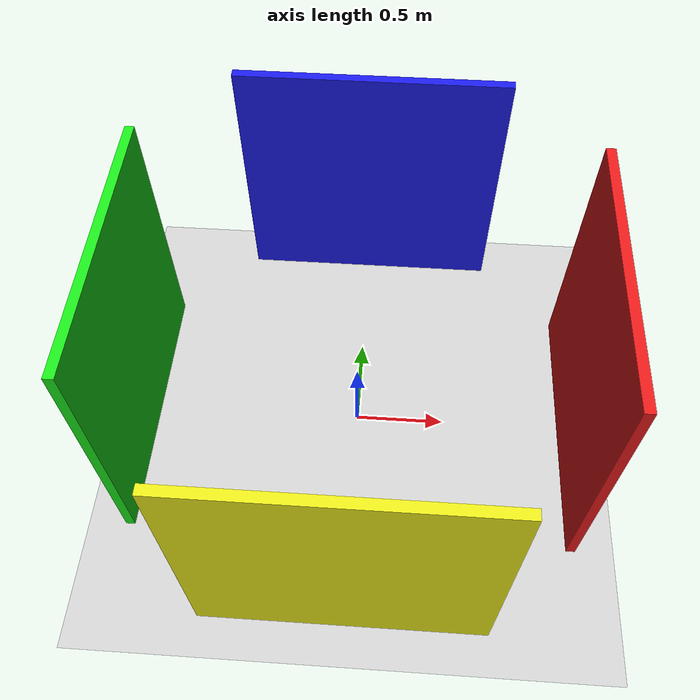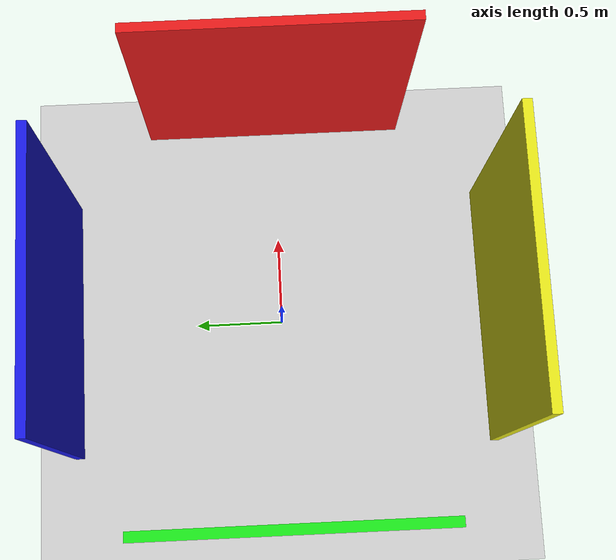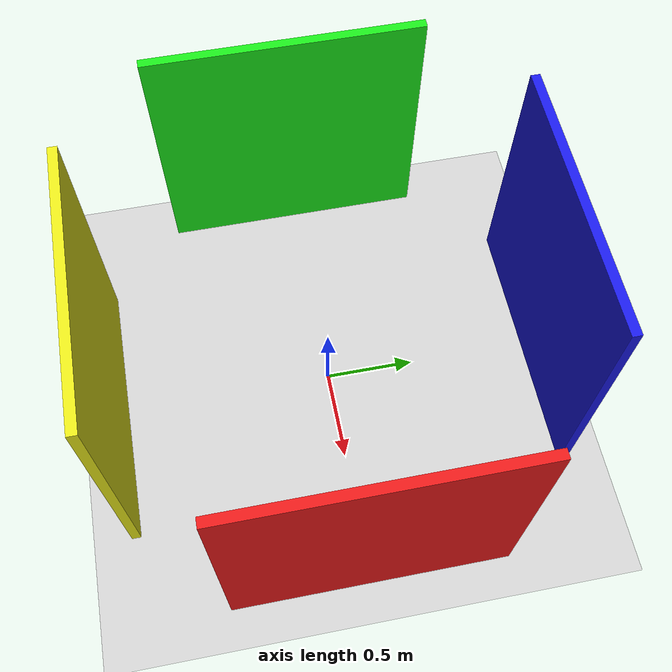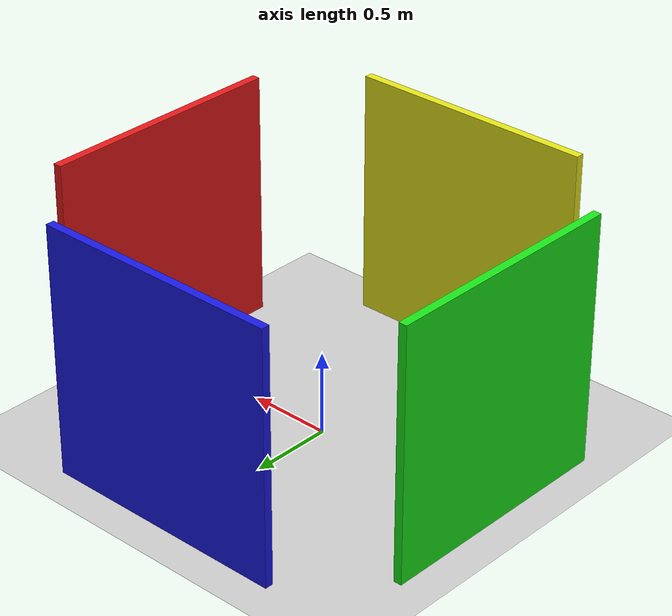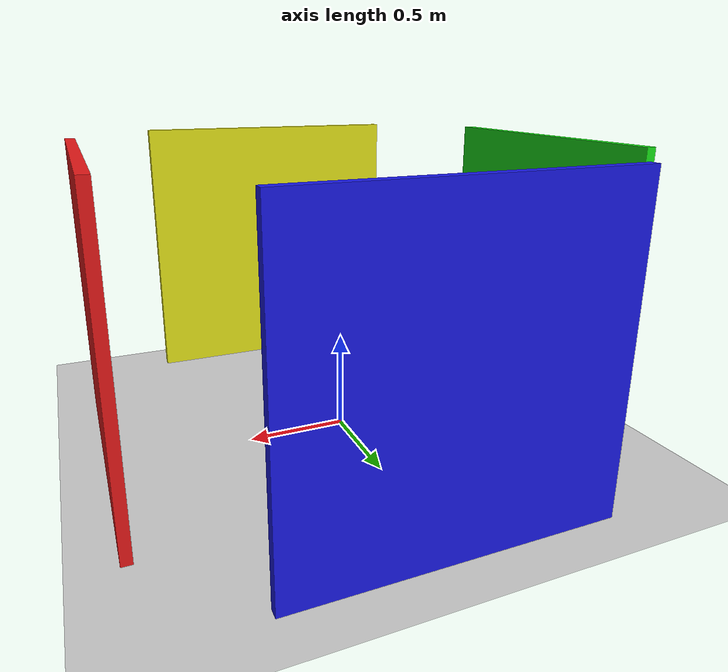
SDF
<?xml version="1.0" ?>
<sdf version="1.6">
  <world name="default">
    <include>
      <uri>model://sun</uri>
    </include>
    <include>
      <uri>model://ground_plane</uri>
    </include>

    <physics type="ode">
      <real_time_update_rate>1000.0</real_time_update_rate>
      <max_step_size>0.001</max_step_size>
      <real_time_factor>1</real_time_factor>
      <ode>
        <solver>
          <type>quick</type>
          <iters>150</iters>
          <precon_iters>0</precon_iters>
          <sor>1.2</sor>
        </solver>
      </ode>
    </physics>

    <gui fullscreen='0'>
      <camera name='user_camera'>
        <pose>2.5 2.5 1.5 0 0.3 2.4</pose>
        <view_controller>orbit</view_controller>
      </camera>
    </gui>

    <!-- 墙 1 - 红色  位于 +X 方向  朝向 -X (即朝向机械臂) -->
    <model name="wall_red">
      <static>true</static>
      <pose>1.2 0.0 0.75 0 0 0</pose>
      <link name="link">
        <collision name="collision">
          <geometry>
            <box>
              <size>0.05 1.5 1.5</size>
            </box>
          </geometry>
        </collision>
        <visual name="visual">
          <geometry>
            <box>
              <size>0.05 1.5 1.5</size>
            </box>
          </geometry>
          <material>
            <ambient>0.8 0.0 0.0 1</ambient>
            <diffuse>0.9 0.1 0.1 1</diffuse>
            <specular>0.1 0.1 0.1 1</specular>
          </material>
        </visual>
      </link>
    </model>

    <!-- 墙 2 - 绿色  位于 -X 方向  朝向 +X -->
    <model name="wall_green">
      <static>true</static>
      <pose>-1.2 0.0 0.75 0 0 0</pose>
      <link name="link">
        <collision name="collision">
          <geometry>
            <box>
              <size>0.05 1.5 1.5</size>
            </box>
          </geometry>
        </collision>
        <visual name="visual">
          <geometry>
            <box>
              <size>0.05 1.5 1.5</size>
            </box>
          </geometry>
          <material>
            <ambient>0.0 0.8 0.0 1</ambient>
            <diffuse>0.1 0.9 0.1 1</diffuse>
            <specular>0.1 0.1 0.1 1</specular>
          </material>
        </visual>
      </link>
    </model>

    <!-- 墙 3 - 蓝色  位于 +Y 方向  朝向 -Y -->
    <model name="wall_blue">
      <static>true</static>
      <pose>0.0 1.2 0.75 0 0 0</pose>
      <link name="link">
        <collision name="collision">
          <geometry>
            <box>
              <size>1.5 0.05 1.5</size>
            </box>
          </geometry>
        </collision>
        <visual name="visual">
          <geometry>
            <box>
              <size>1.5 0.05 1.5</size>
            </box>
          </geometry>
          <material>
            <ambient>0.0 0.0 0.8 1</ambient>
            <diffuse>0.1 0.1 0.9 1</diffuse>
            <specular>0.1 0.1 0.1 1</specular>
          </material>
        </visual>
      </link>
    </model>

    <!-- 墙 4 - 黄色  位于 -Y 方向  朝向 +Y -->
    <model name="wall_yellow">
      <static>true</static>
      <pose>0.0 -1.2 0.75 0 0 0</pose>
      <link name="link">
        <collision name="collision">
          <geometry>
            <box>
              <size>1.5 0.05 1.5</size>
            </box>
          </geometry>
        </collision>
        <visual name="visual">
          <geometry>
            <box>
              <size>1.5 0.05 1.5</size>
            </box>
          </geometry>
          <material>
            <ambient>0.8 0.8 0.0 1</ambient>
            <diffuse>0.9 0.9 0.1 1</diffuse>
            <specular>0.1 0.1 0.1 1</specular>
          </material>
        </visual>
      </link>
    </model>

  </world>
</sdf>
